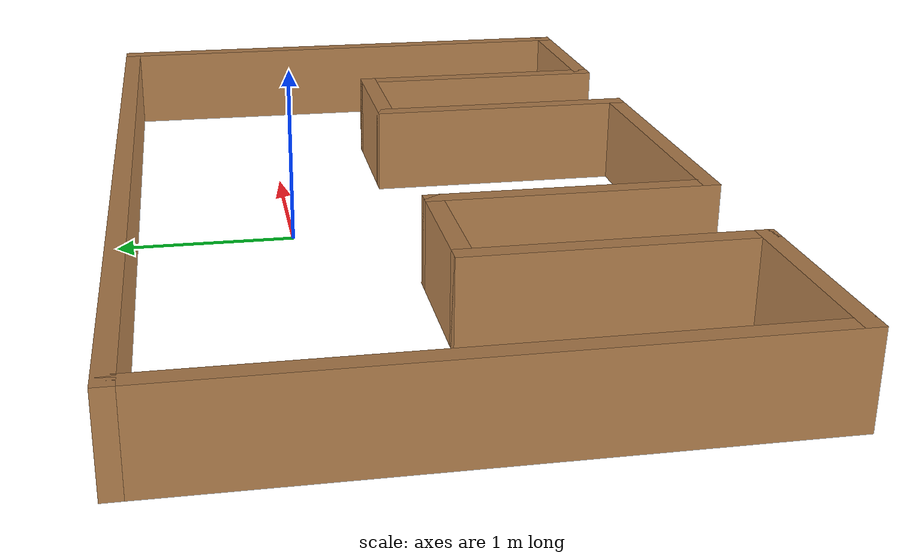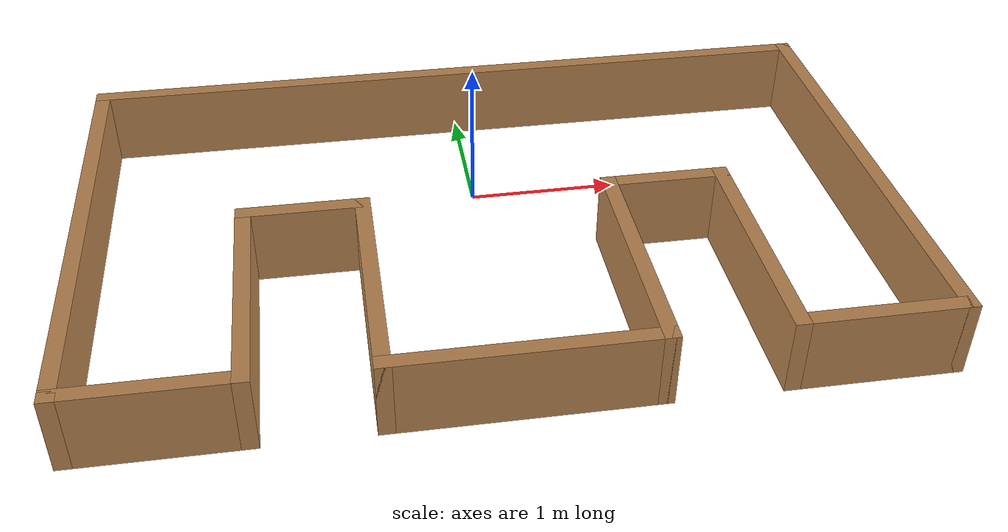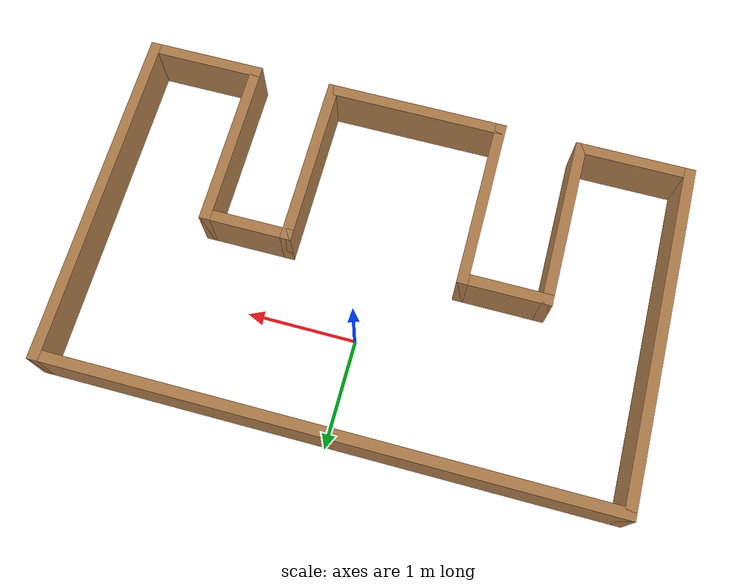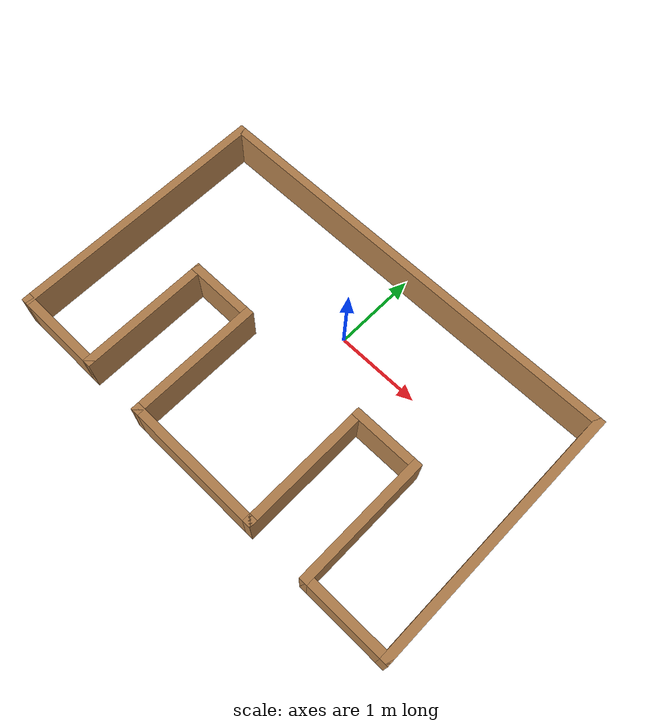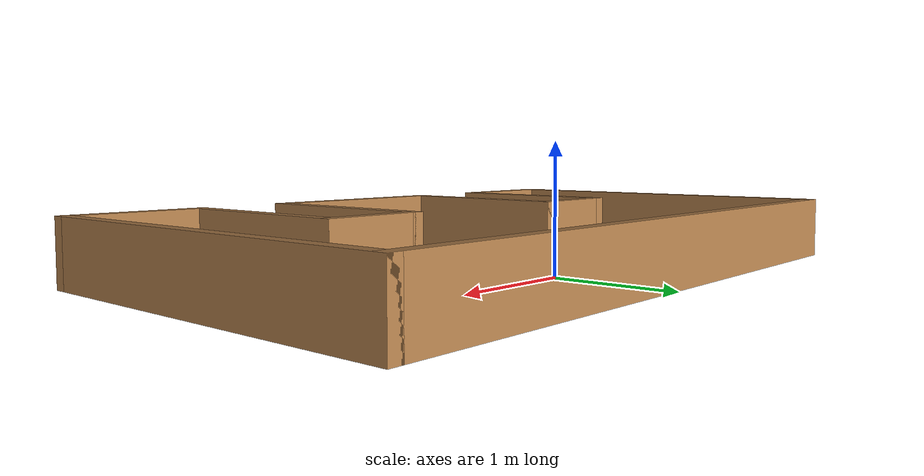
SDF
<?xml version='1.0'?>
<sdf version='1.6'>
  <model name='new_stage_5_3m_1'>
  <pose>0 0 0 0 -0 0</pose>
    <link name='Wall_0'>
      <collision name='Wall_0_Collision'>
        <geometry>
          <box>
            <size>5.2 0.1 0.5</size>
          </box>
        </geometry>
        <pose>0 0 0.25 0 -0 0</pose>
      </collision>
      <visual name='Wall_0_Visual'>
        <pose>0 0 0.25 0 -0 0</pose>
        <geometry>
          <box>
            <size>5.2 0.1 0.5</size>
          </box>
        </geometry>
        <material>
          <script>
            <uri>file://media/materials/scripts/gazebo.material</uri>
            <name>Gazebo/Wood</name>
          </script>
          <ambient>1 0.764706 0.305882 1</ambient>
        </material>
      </visual>
      <pose>-0 0.935 0 0 -0 0</pose>
    </link>
    <link name='Wall_10'>
      <collision name='Wall_10_Collision'>
        <geometry>
          <box>
            <size>1.6 0.1 0.5</size>
          </box>
        </geometry>
        <pose>0 0 0.25 0 -0 0</pose>
      </collision>
      <visual name='Wall_10_Visual'>
        <pose>0 0 0.25 0 -0 0</pose>
        <geometry>
          <box>
            <size>1.6 0.1 0.5</size>
          </box>
        </geometry>
        <material>
          <script>
            <uri>file://media/materials/scripts/gazebo.material</uri>
            <name>Gazebo/Wood</name>
          </script>
          <ambient>1 0.764706 0.305882 1</ambient>
        </material>
      </visual>
      <pose>-0.8 -1.415 0 0 -0 -1.5708</pose>
    </link>
    <link name='Wall_12'>
      <collision name='Wall_12_Collision'>
        <geometry>
          <box>
            <size>1.7 0.1 0.5</size>
          </box>
        </geometry>
        <pose>0 0 0.25 0 -0 0</pose>
      </collision>
      <visual name='Wall_12_Visual'>
        <pose>0 0 0.25 0 -0 0</pose>
        <geometry>
          <box>
            <size>1.7 0.1 0.5</size>
          </box>
        </geometry>
        <material>
          <script>
            <uri>file://media/materials/scripts/gazebo.material</uri>
            <name>Gazebo/Wood</name>
          </script>
          <ambient>1 0.764706 0.305882 1</ambient>
        </material>
      </visual>
      <pose>-0 -2.165 0 0 -0 0</pose>
    </link>
    <link name='Wall_14'>
      <collision name='Wall_14_Collision'>
        <geometry>
          <box>
            <size>1.6 0.1 0.5</size>
          </box>
        </geometry>
        <pose>0 0 0.25 0 -0 0</pose>
      </collision>
      <visual name='Wall_14_Visual'>
        <pose>0 0 0.25 0 -0 0</pose>
        <geometry>
          <box>
            <size>1.6 0.1 0.5</size>
          </box>
        </geometry>
        <material>
          <script>
            <uri>file://media/materials/scripts/gazebo.material</uri>
            <name>Gazebo/Wood</name>
          </script>
          <ambient>1 0.764706 0.305882 1</ambient>
        </material>
      </visual>
      <pose>0.8 -1.415 0 0 -0 1.5708</pose>
    </link>
    <link name='Wall_16'>
      <collision name='Wall_16_Collision'>
        <geometry>
          <box>
            <size>0.85 0.1 0.5</size>
          </box>
        </geometry>
        <pose>0 0 0.25 0 -0 0</pose>
      </collision>
      <visual name='Wall_16_Visual'>
        <pose>0 0 0.25 0 -0 0</pose>
        <geometry>
          <box>
            <size>0.85 0.1 0.5</size>
          </box>
        </geometry>
        <material>
          <script>
            <uri>file://media/materials/scripts/gazebo.material</uri>
            <name>Gazebo/Wood</name>
          </script>
          <ambient>1 0.764706 0.305882 1</ambient>
        </material>
      </visual>
      <pose>1.175 -0.665 0 0 -0 0</pose>
    </link>
    <link name='Wall_18'>
      <collision name='Wall_18_Collision'>
        <geometry>
          <box>
            <size>1.6 0.1 0.5</size>
          </box>
        </geometry>
        <pose>0 0 0.25 0 -0 0</pose>
      </collision>
      <visual name='Wall_18_Visual'>
        <pose>0 0 0.25 0 -0 0</pose>
        <geometry>
          <box>
            <size>1.6 0.1 0.5</size>
          </box>
        </geometry>
        <material>
          <script>
            <uri>file://media/materials/scripts/gazebo.material</uri>
            <name>Gazebo/Wood</name>
          </script>
          <ambient>1 0.764706 0.305882 1</ambient>
        </material>
      </visual>
      <pose>1.55 -1.415 0 0 -0 -1.5708</pose>
    </link>
    <link name='Wall_2'>
      <collision name='Wall_2_Collision'>
        <geometry>
          <box>
            <size>3.2 0.1 0.5</size>
          </box>
        </geometry>
        <pose>0 0 0.25 0 -0 0</pose>
      </collision>
      <visual name='Wall_2_Visual'>
        <pose>0 0 0.25 0 -0 0</pose>
        <geometry>
          <box>
            <size>3.2 0.1 0.5</size>
          </box>
        </geometry>
        <material>
          <script>
            <uri>file://media/materials/scripts/gazebo.material</uri>
            <name>Gazebo/Wood</name>
          </script>
          <ambient>1 0.764706 0.305882 1</ambient>
        </material>
      </visual>
      <pose>-2.55 -0.615 0 0 -0 -1.5708</pose>
    </link>
    <link name='Wall_20'>
      <collision name='Wall_20_Collision'>
        <geometry>
          <box>
            <size>1.1 0.1 0.5</size>
          </box>
        </geometry>
        <pose>0 0 0.25 0 -0 0</pose>
      </collision>
      <visual name='Wall_20_Visual'>
        <pose>0 0 0.25 0 -0 0</pose>
        <geometry>
          <box>
            <size>1.1 0.1 0.5</size>
          </box>
        </geometry>
        <material>
          <script>
            <uri>file://media/materials/scripts/gazebo.material</uri>
            <name>Gazebo/Wood</name>
          </script>
          <ambient>1 0.764706 0.305882 1</ambient>
        </material>
      </visual>
      <pose>2.05 -2.165 0 0 -0 0</pose>
    </link>
    <link name='Wall_22'>
      <collision name='Wall_22_Collision'>
        <geometry>
          <box>
            <size>3.2 0.1 0.5</size>
          </box>
        </geometry>
        <pose>0 0 0.25 0 -0 0</pose>
      </collision>
      <visual name='Wall_22_Visual'>
        <pose>0 0 0.25 0 -0 0</pose>
        <geometry>
          <box>
            <size>3.2 0.1 0.5</size>
          </box>
        </geometry>
        <material>
          <script>
            <uri>file://media/materials/scripts/gazebo.material</uri>
            <name>Gazebo/Wood</name>
          </script>
          <ambient>1 0.764706 0.305882 1</ambient>
        </material>
      </visual>
      <pose>2.55 -0.615 0 0 -0 -1.5708</pose>
    </link>
    <link name='Wall_4'>
      <collision name='Wall_4_Collision'>
        <geometry>
          <box>
            <size>1.1 0.1 0.5</size>
          </box>
        </geometry>
        <pose>0 0 0.25 0 -0 0</pose>
      </collision>
      <visual name='Wall_4_Visual'>
        <pose>0 0 0.25 0 -0 0</pose>
        <geometry>
          <box>
            <size>1.1 0.1 0.5</size>
          </box>
        </geometry>
        <material>
          <script>
            <uri>file://media/materials/scripts/gazebo.material</uri>
            <name>Gazebo/Wood</name>
          </script>
          <ambient>1 0.764706 0.305882 1</ambient>
        </material>
      </visual>
      <pose>-2.05 -2.165 0 0 -0 0</pose>
    </link>
    <link name='Wall_6'>
      <collision name='Wall_6_Collision'>
        <geometry>
          <box>
            <size>1.6 0.1 0.5</size>
          </box>
        </geometry>
        <pose>0 0 0.25 0 -0 0</pose>
      </collision>
      <visual name='Wall_6_Visual'>
        <pose>0 0 0.25 0 -0 0</pose>
        <geometry>
          <box>
            <size>1.6 0.1 0.5</size>
          </box>
        </geometry>
        <material>
          <script>
            <uri>file://media/materials/scripts/gazebo.material</uri>
            <name>Gazebo/Wood</name>
          </script>
          <ambient>1 0.764706 0.305882 1</ambient>
        </material>
      </visual>
      <pose>-1.55 -1.415 0 0 -0 1.5708</pose>
    </link>
    <link name='Wall_8'>
      <collision name='Wall_8_Collision'>
        <geometry>
          <box>
            <size>0.85 0.1 0.5</size>
          </box>
        </geometry>
        <pose>0 0 0.25 0 -0 0</pose>
      </collision>
      <visual name='Wall_8_Visual'>
        <pose>0 0 0.25 0 -0 0</pose>
        <geometry>
          <box>
            <size>0.85 0.1 0.5</size>
          </box>
        </geometry>
        <material>
          <script>
            <uri>file://media/materials/scripts/gazebo.material</uri>
            <name>Gazebo/Wood</name>
          </script>
          <ambient>1 0.764706 0.305882 1</ambient>
        </material>
      </visual>
      <pose>-1.175 -0.665 0 0 -0 0</pose>
    </link>
    <static>1</static>
  </model>
</sdf>
